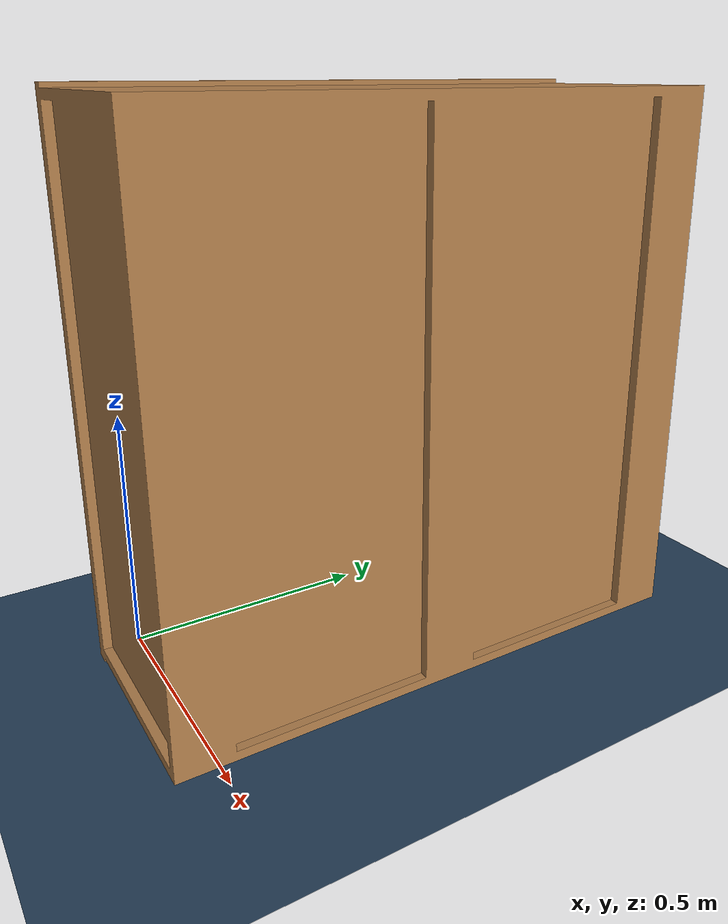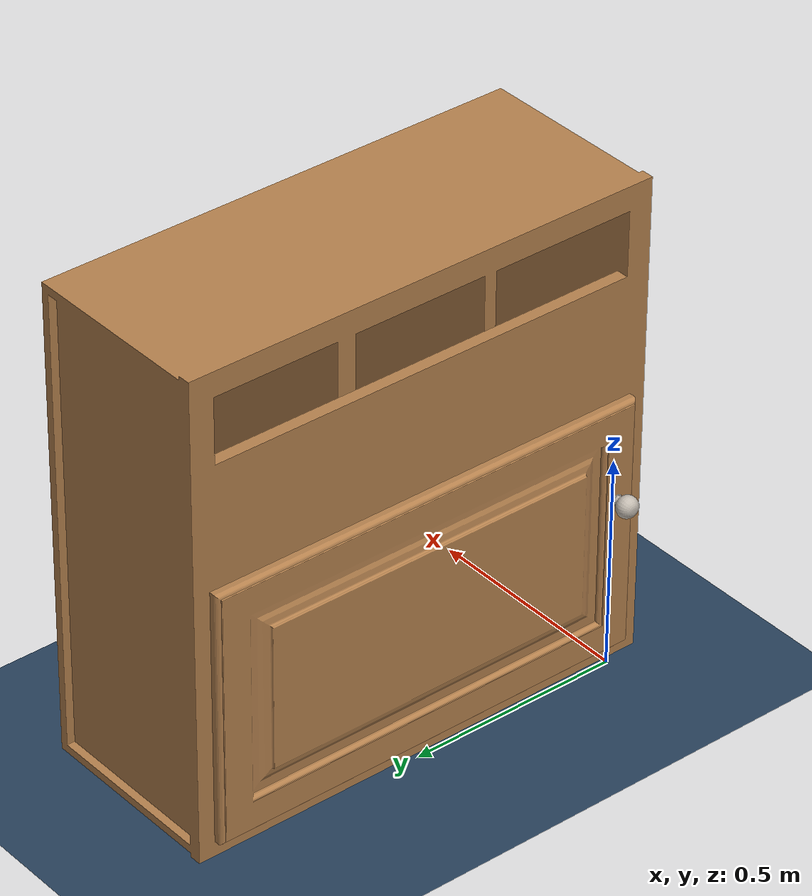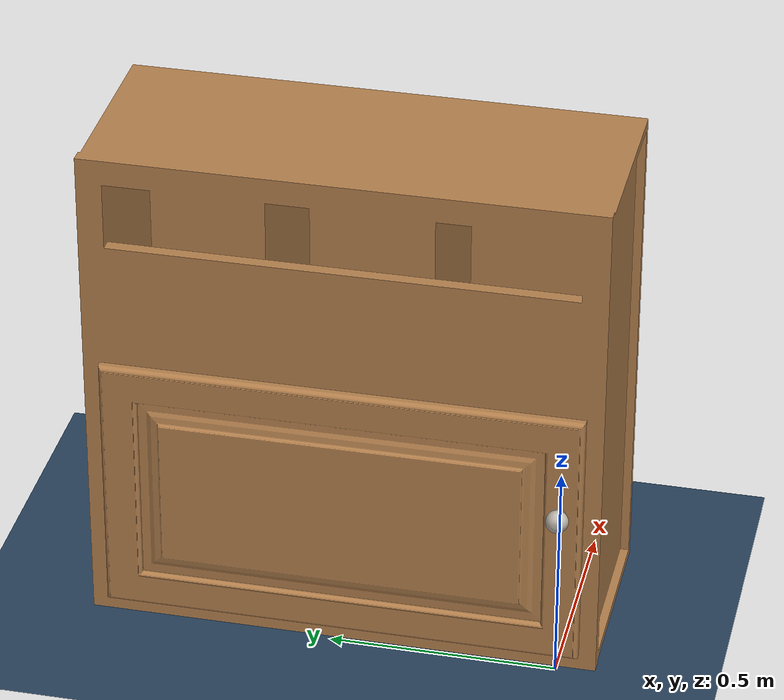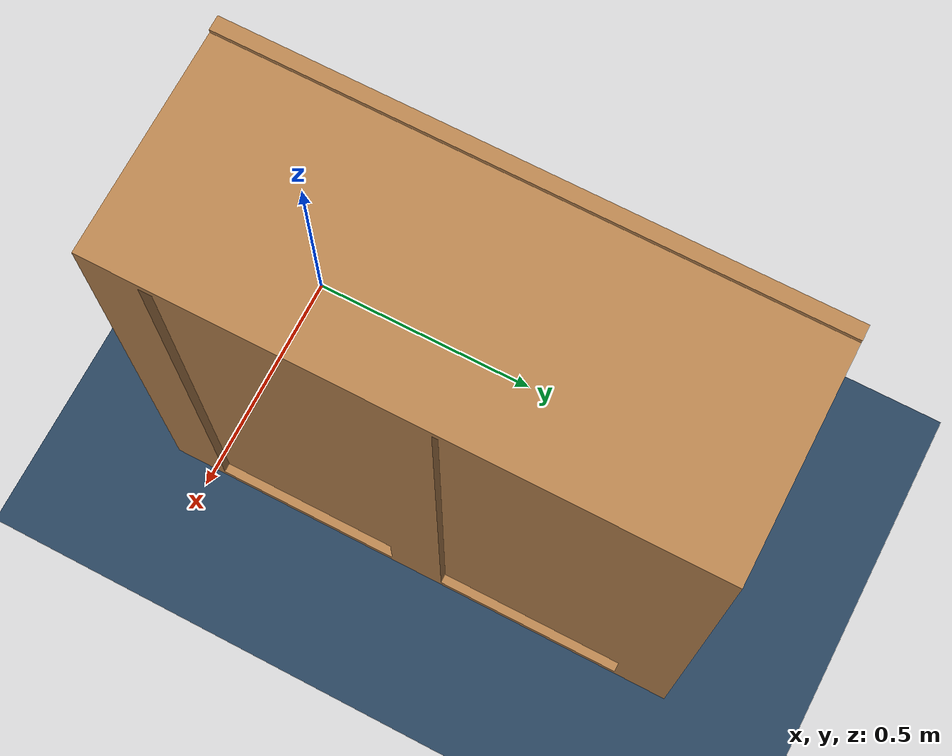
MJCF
<mujoco model="right-pull-door">
  <compiler angle="radian" meshdir="texture_stl/"/>

  <visual>
    <headlight diffuse="0.6 0.6 0.6" ambient="0.3 0.3 0.3" specular="0 0 0"/>
    <rgba haze="0.15 0.25 0.35 1"/>
    <global azimuth="-20" elevation="-20" ellipsoidinertia="true"/>
  </visual>

  <asset>
    <texture type="skybox" builtin="gradient" rgb1="0.3 0.5 0.7" rgb2="0 0 0" width="512" height="3072"/>
    <texture type="2d" name="groundplane" builtin="checker" mark="edge" rgb1="0.2 0.3 0.4" rgb2="0.1 0.2 0.3"
      markrgb="0.8 0.8 0.8" width="300" height="300"/>
    <texture name="wood" type="cube" file="texture_stl/texture_0.png"/>
    <texture name="knob" type="2d" file="texture_stl/texture_1.png"/>
    <material name="wood_material" texture="wood"/>
    <material name="knob_material" texture="knob"/>
    <material name="groundplane" texture="groundplane" texuniform="true" texrepeat="5 5" reflectance="0.2"/>

    <mesh name="frame" file="frame.stl" scale="0.8 0.8 0.8"/>
    <mesh name="board" file="board.stl" scale="0.8 0.8 0.8"/>
    <mesh name="9962009" file="9962009.stl" scale="0.966345 0.966345 0.966345"/>
  </asset>

  <worldbody>
    <light pos="0 0 1.5" dir="0 0 -1" directional="true"/>
    <geom name="floor" size="0 0 0.05" type="plane" material="groundplane"/>
    <body name="cabinet" euler="0 1.57 0" pos="0 0 0.4">
      <geom name="frame" pos="0 0 0" quat="0.5 0.5 -0.5 -0.5" type="mesh" mesh="frame" material="wood_material" conaffinity="0" contype="0"/>
      <body name="link_1" pos="0 1.00226 0" quat="0.5 0.5 -0.5 -0.5">
        <inertial pos="0 0 0" mass="10.0" diaginertia="5.0 5.0 5.0"/>
        <joint name="joint_1" pos="0 0 0" axis="0 0 -1" range="0 1.50796"/>
        <geom name="board" pos="1.00226 0 0" quat="1 0 0 0" type="mesh" mesh="board" material="wood_material"/>
        <body name="link_2" pos="1.00226 0 0.0139095">
          <joint name="joint_2" pos="0 0 0" axis="0 1 0" range="0 1.50796"/>
          <geom name="handle" type="mesh" mesh="9962009" material="knob_material"/>
        </body>
      </body>
    </body>
  </worldbody>
</mujoco>
